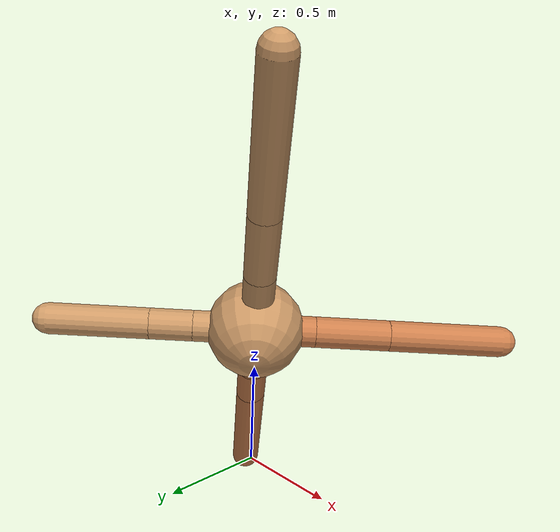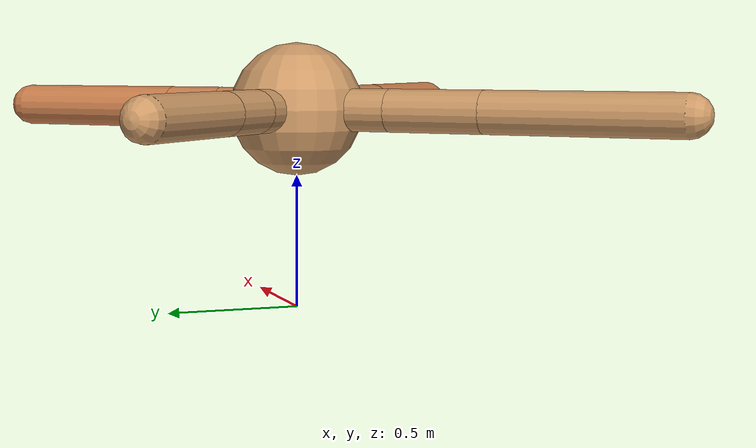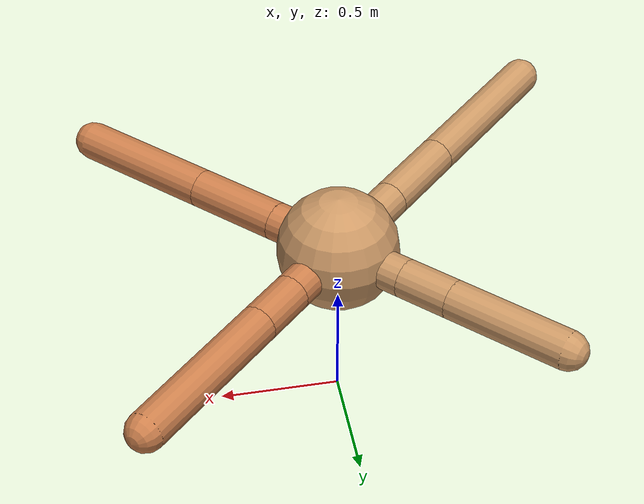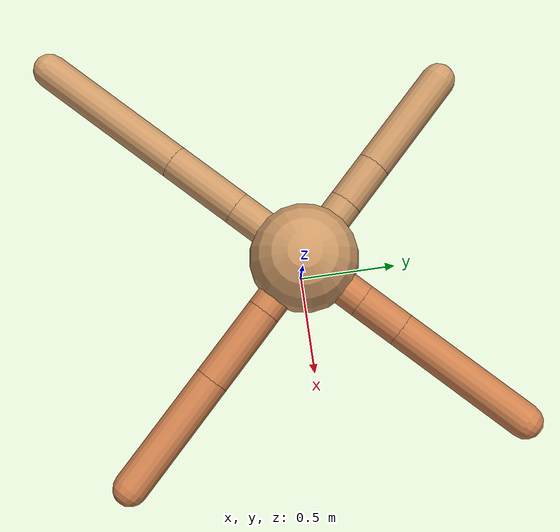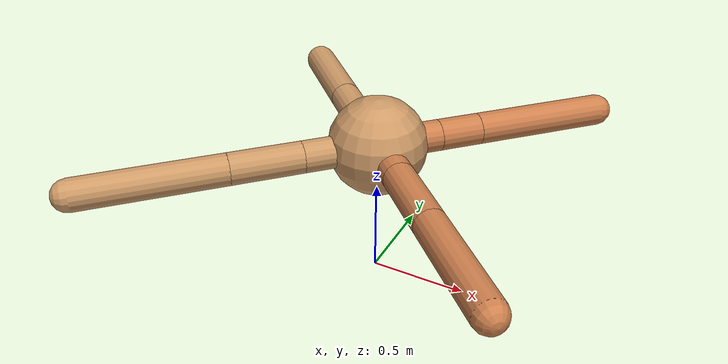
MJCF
<mujoco model="ant">
  <compiler angle="degree" coordinate="local" inertiafromgeom="true" />
  <option integrator="RK4" timestep="0.01" />
  <custom>
    <numeric data="0.0 0.0 0.55 1.0 0.0 0.0 0.0 0.0 1.0 0.0 -1.0 0.0 -1.0 0.0 1.0" name="init_qpos" />
  </custom>
  <default>
    <joint armature="1" damping="1" limited="true" />
    <geom conaffinity="0" condim="3" density="5.0" friction="1.5 0.1 0.1" margin="0.01" rgba="0.8 0.6 0.4 1" />
  </default>
  <worldbody>
    <body name="torso" pos="0 0 0.75">
      <geom name="torso_geom" pos="0 0 0" size="0.25" type="sphere" />

      <body name="front_left_leg" pos="0 0 0">
        <geom fromto="0.0 0.0 0.0 0.22923562503516146 0.22923562503516146 0.0" name="aux_1_geom" size="0.08" type="capsule" rgba=".8 .5 .3 1" />
        <body name="aux_1" pos="0.22923562503516146 0.22923562503516146 0.0">
          <joint axis="0 0 1" name="hip_1" pos="0.0 0.0 0.0" range="-40 40" type="hinge" />
          <geom fromto="0.0 0.0 0.0 0.1523546812725079 0.1523546812725079 0.0" name="left_leg_geom" size="0.08" type="capsule" rgba=".8 .5 .3 1" />
          <body pos="0.1523546812725079 0.1523546812725079 0.0" name="front_left_foot">
            <joint axis="-1 1 0" name="ankle_1" pos="0.0 0.0 0.0" range="30 100" type="hinge" />
            <geom fromto="0.0 0.0 0.0 0.4818703095266279 0.4818703095266279 0.0" name="left_ankle_geom" size="0.08" type="capsule" rgba=".8 .5 .3 1" />
          </body>
        </body>
      </body>
      <body name="front_right_leg" pos="0 0 0">
        <geom fromto="0.0 0.0 0.0 -0.22436779193543555 0.22436779193543555 0.0" name="aux_2_geom" size="0.08" type="capsule" />
        <body name="aux_2" pos="-0.22436779193543555 0.22436779193543555 0.0">
          <joint axis="0 0 1" name="hip_2" pos="0.0 0.0 0.0" range="-40 40" type="hinge" />
          <geom fromto="0.0 0.0 0.0 -0.15484465541304923 0.15484465541304923 0.0" name="right_leg_geom" size="0.08" type="capsule" />
          <body pos="-0.15484465541304923 0.15484465541304923 0.0" name="front_right_foot">
            <joint axis="1 1 0" name="ankle_2" pos="0.0 0.0 0.0" range="-100 -30" type="hinge" />
            <geom fromto="0.0 0.0 0.0 -0.35781096409257523 0.35781096409257523 0.0" name="right_ankle_geom" size="0.08" type="capsule" />
          </body>
        </body>
      </body>
      <body name="left_back_leg" pos="0 0 0">
        <geom fromto="0.0 0.0 0.0 -0.270311496585706 -0.270311496585706 0.0" name="aux_3_geom" size="0.08" type="capsule" />
        <body name="aux_3" pos="-0.270311496585706 -0.270311496585706 0.0">
          <joint axis="0 0 1" name="hip_3" pos="0.0 0.0 0.0" range="-40 40" type="hinge" />
          <geom fromto="0.0 0.0 0.0 -0.2561428129680129 -0.2561428129680129 0.0" name="back_leg_geom" size="0.08" type="capsule" />
          <body pos="-0.2561428129680129 -0.2561428129680129 0.0" name="left_back_foot">
            <joint axis="-1 1 0" name="ankle_3" pos="0.0 0.0 0.0" range="-100 -30" type="hinge" />
            <geom fromto="0.0 0.0 0.0 -0.5134501360104012 -0.5134501360104012 0.0" name="third_ankle_geom" size="0.08" type="capsule" />
          </body>
        </body>
      </body>
      <body name="right_back_leg" pos="0 0 0">
        <geom fromto="0.0 0.0 0.0 0.2162147233128737 -0.2162147233128737 0.0" name="aux_4_geom" size="0.08" type="capsule" rgba=".8 .5 .3 1" />
        <body name="aux_4" pos="0.2162147233128737 -0.2162147233128737 0.0">
          <joint axis="0 0 1" name="hip_4" pos="0.0 0.0 0.0" range="-40 40" type="hinge" />
          <geom fromto="0.0 0.0 0.0 0.2699723852698141 -0.2699723852698141 0.0" name="rightback_leg_geom" size="0.08" type="capsule" rgba=".8 .5 .3 1" />
          <body pos="0.2699723852698141 -0.2699723852698141 0.0" name="right_back_foot">
            <joint axis="1 1 0" name="ankle_4" pos="0.0 0.0 0.0" range="30 100" type="hinge" />
            <geom fromto="0.0 0.0 0.0 0.4168795387546868 -0.4168795387546868 0.0" name="fourth_ankle_geom" size="0.08" type="capsule" rgba=".8 .5 .3 1" />
          </body>
        </body>
      </body>
    </body>
  </worldbody>
  <actuator>
    <motor ctrllimited="true" ctrlrange="-1.0 1.0" joint="hip_4" gear="150" />
    <motor ctrllimited="true" ctrlrange="-1.0 1.0" joint="ankle_4" gear="150" />
    <motor ctrllimited="true" ctrlrange="-1.0 1.0" joint="hip_1" gear="150" />
    <motor ctrllimited="true" ctrlrange="-1.0 1.0" joint="ankle_1" gear="150" />
    <motor ctrllimited="true" ctrlrange="-1.0 1.0" joint="hip_2" gear="150" />
    <motor ctrllimited="true" ctrlrange="-1.0 1.0" joint="ankle_2" gear="150" />
    <motor ctrllimited="true" ctrlrange="-1.0 1.0" joint="hip_3" gear="150" />
    <motor ctrllimited="true" ctrlrange="-1.0 1.0" joint="ankle_3" gear="150" />
  </actuator>
</mujoco>
